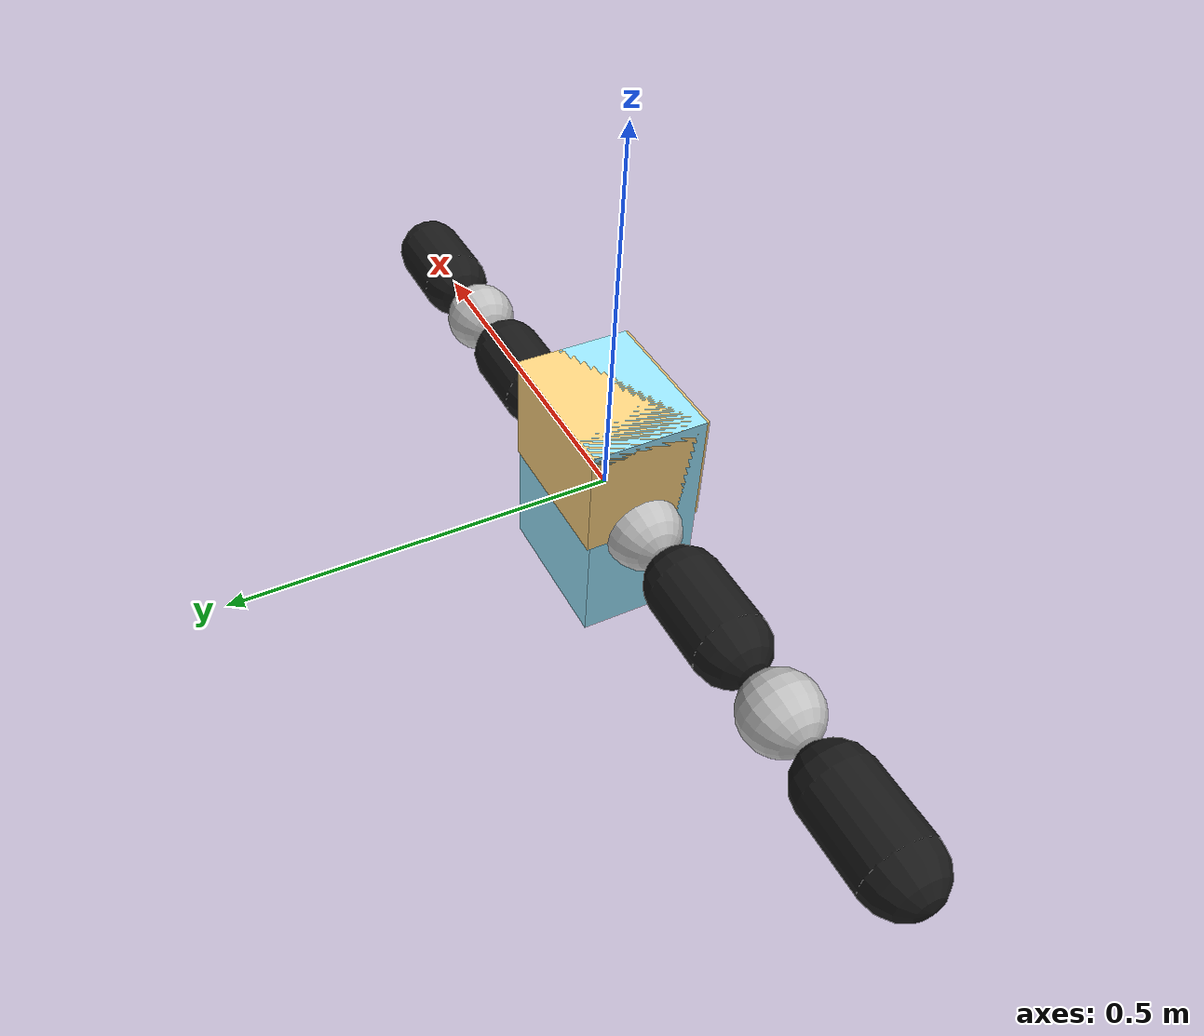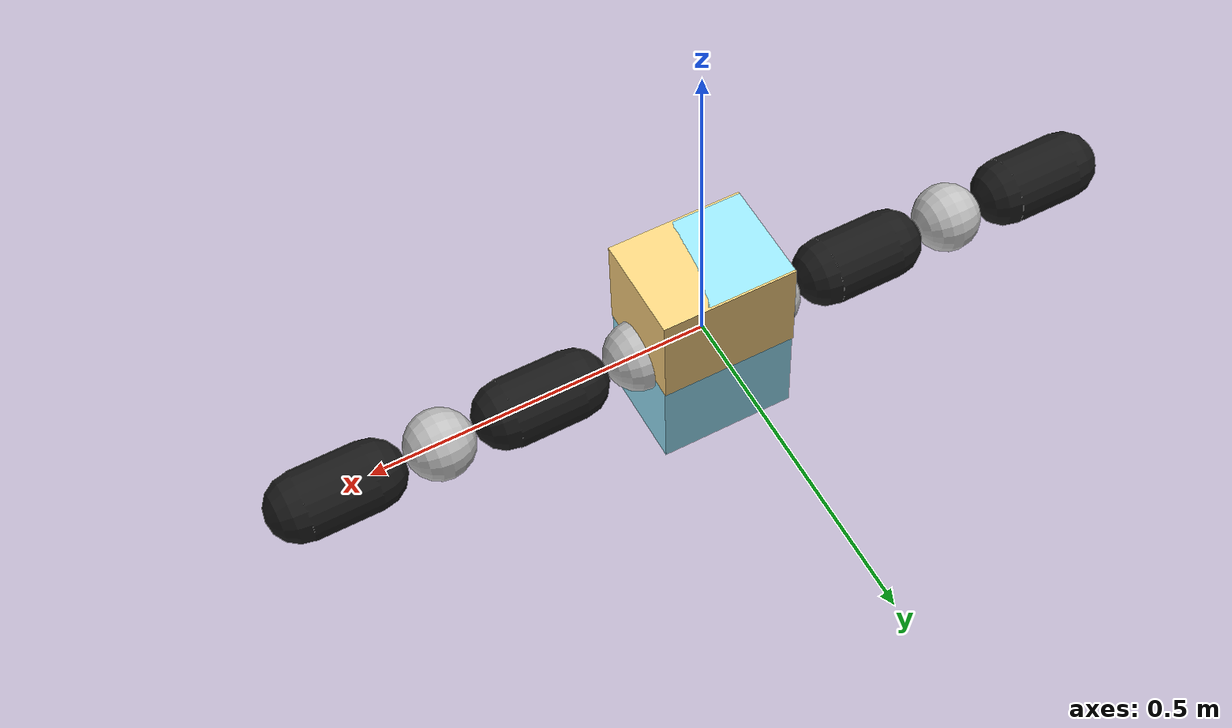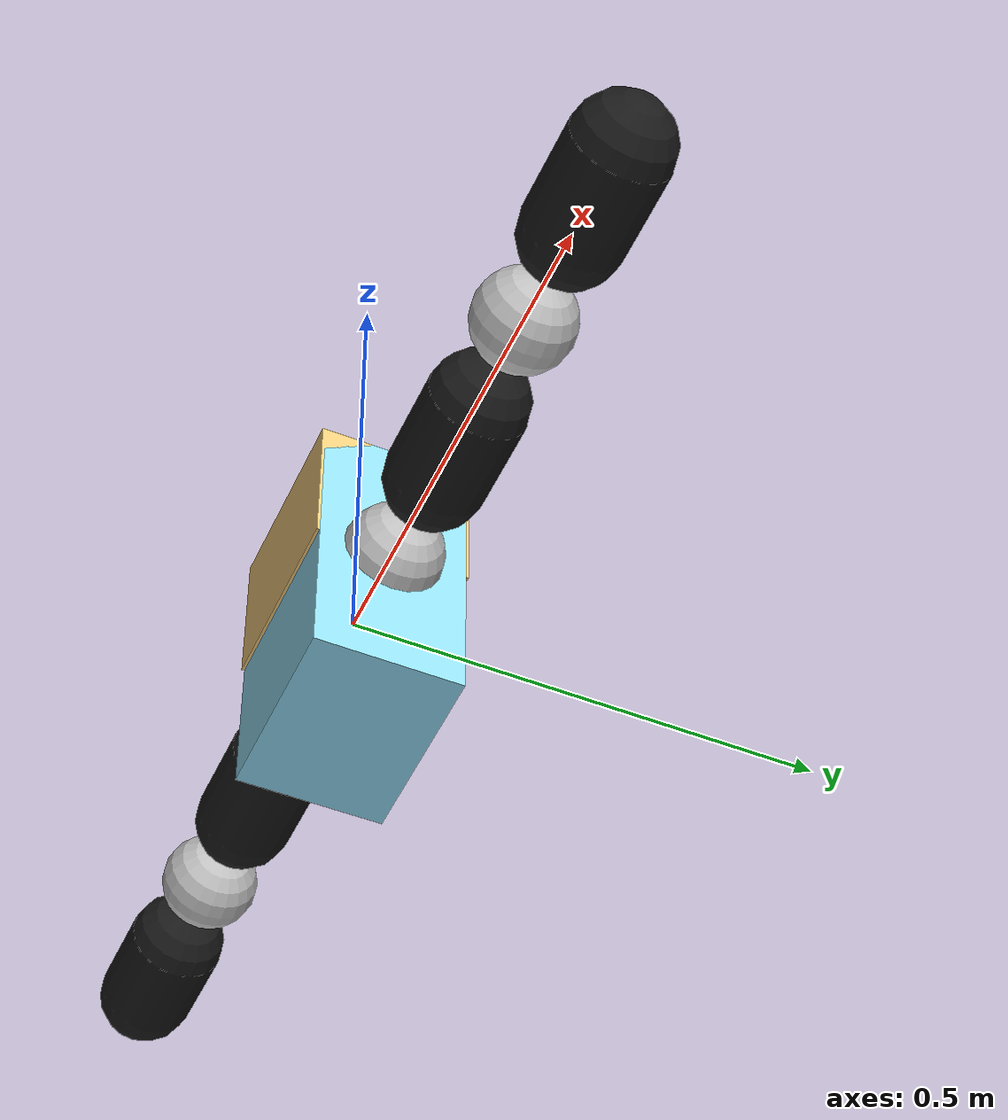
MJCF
<mujoco model="planar_hand">
<!-- Copyright (c) 2023 Boston Dynamics AI Institute LLC. All rights reserved. -->
  <compiler angle="radian" autolimits="true"/>
  <option gravity="0 0 -9.81" timestep="0.01" />
  <asset>
    <texture name="blue_grid" type="2d" builtin="checker" rgb1=".02 .14 .44" rgb2=".27 .55 1" width="300" height="300" mark="edge" markrgb="1 1 1"/>
    <material name="blue_grid" texture="blue_grid" texrepeat="1 1" texuniform="true" reflectance=".2"/>
    <material name="object" rgba="0.6 0.9 1 1"/>
    <material name="grey" rgba="0.75 .75 .75 1"/>
    <material name="black" rgba="0.1 .1 .1 1"/>
  </asset>

  <default>
    <material specular="0.5" shininess="0.95"/>
    <default class="finger">
      <joint axis="0 1 0" damping="2"/>
      <position kp="25" forcerange="-1000 1000"/>
      <default class="left_shoulder">
        <joint range="-1.57 0"/>
        <position ctrlrange="-1.57 0"/>
      </default>
      <default class="right_shoulder">
        <joint range="0 1.57"/>
        <position ctrlrange="0 1.57"/>
      </default>
      <default class="left_elbow">
        <joint range="-2.4 0"/>
        <position ctrlrange="-2.4 0"/>
      </default>
      <default class="right_elbow">
        <joint range="0 2.4"/>
        <position ctrlrange="0 2.4"/>
      </default>
    </default>
  </default>

  <worldbody>
    <body name="box" pos="0 0 0">
      <geom name="box" mass="0.4" size="0.10 0.075 0.15" type="box" material="object"/>
      <geom name="visual_box" mass="0" size="0.10 0.078 0.075" pos="0 0 0.075" type="box" rgba="1 0.83 0.5 1" contype="0" conaffinity="0"/>
      <site pos="0 0 0" name="site_box"/>
      <joint axis="1 0 0" name="slide_x" type="slide" range="-5 5"/>
      <joint axis="0 0 1" name="slide_z" type="slide" range="-5 5"/>
      <joint axis="0 -1 0" name="hinge_y" type="hinge"/>
    </body>

    <body name="robot_base" pos="0 0 0">
      <geom name="base_left" mass="1.0" pos="0.1 0 0" quat="0.5 0 0.5 0" size="0.05" type="sphere" material="grey"/>
      <geom name="base_right" mass="1.0" pos="-0.1 0 0" quat="0.5 0 0.5 0" size="0.05" type="sphere" material="grey"/>
      <body name="body_left_shoulder" pos="0.10 0 0">
        <geom name="left_shoulder_0" mass="0.5" pos="0.15 0 0" quat="0.5 0 0.5 0" size="0.05 0.05" type="capsule" material="black"/>
        <site pos="0.15 0 0" name="site_left_shoulder"/>
        <geom name="left_shoulder_1" mass="0.5" pos="0.30 0 0" quat="0.5 0 0.5 0" size="0.05" type="sphere" material="grey"/>
        <joint name="joint_left_shoulder" class="left_shoulder"/>
        <body name="body_left_elbow" pos="0.30 0 0">
          <geom name="left_elbow" mass="0.5" pos="0.15 0 0" quat="0.5 0 0.5 0" size="0.05 0.05" type="capsule" material="black"/>
          <site pos="0.15 0 0" name="site_left_elbow"/>
          <joint name="joint_left_elbow" class="left_elbow"/>
        </body>
      </body>
      <body name="body_right_shoulder" pos="-0.10 0 0">
        <geom name="right_shoulder_0" mass="0.5" pos="-0.15 0 0" quat="0.5 0 0.5 0" size="0.05 0.05" type="capsule" material="black"/>
        <site pos="-0.15 0 0" name="site_right_shoulder"/>
        <geom name="right_shoulder_1" mass="0.5" pos="-0.30 0 0" quat="0.5 0 0.5 0" size="0.05" type="sphere" material="grey"/>
        <joint name="joint_right_shoulder" class="right_shoulder"/>
        <body name="body_right_elbow" pos="-0.30 0 0">
          <geom name="right_elbow" mass="0.5" pos="-0.15 0 0" quat="0.5 0 0.5 0" size="0.05 0.05" type="capsule" material="black"/>
          <site pos="-0.15 0 0" name="site_right_elbow"/>
          <joint name="joint_right_elbow" class="right_elbow"/>
        </body>
      </body>
    </body>
  </worldbody>

  <keyframe>
    <!-- [object_xytheta arm_joint_angles] -->
    <key name="home" qpos="0 0 0  0 0 0 0" />
  </keyframe>

  <contact>
    <exclude body1="robot_base" body2="body_left_shoulder"/>
    <exclude body1="robot_base" body2="body_right_shoulder"/>
  </contact>

  <sensor>
    <framepos name="sensor_left_shoulder" objtype="site" objname="site_left_shoulder" reftype="site" refname="site_box"/>
    <framepos name="sensor_left_elbow" objtype="site" objname="site_left_elbow" reftype="site" refname="site_box"/>
    <framepos name="sensor_right_shoulder" objtype="site" objname="site_right_shoulder" reftype="site" refname="site_box"/>
    <framepos name="sensor_right_elbow" objtype="site" objname="site_right_elbow" reftype="site" refname="site_box"/>
  </sensor>

  <actuator>
    <position name="actuator_left_shoulder" joint="joint_left_shoulder" class="left_shoulder"/>
    <position name="actuator_left_elbow" joint="joint_left_elbow" class="left_elbow"/>
    <position name="actuator_right_shoulder" joint="joint_right_shoulder" class="right_shoulder"/>
    <position name="actuator_right_elbow" joint="joint_right_elbow" class="right_elbow"/>
  </actuator>
</mujoco>
